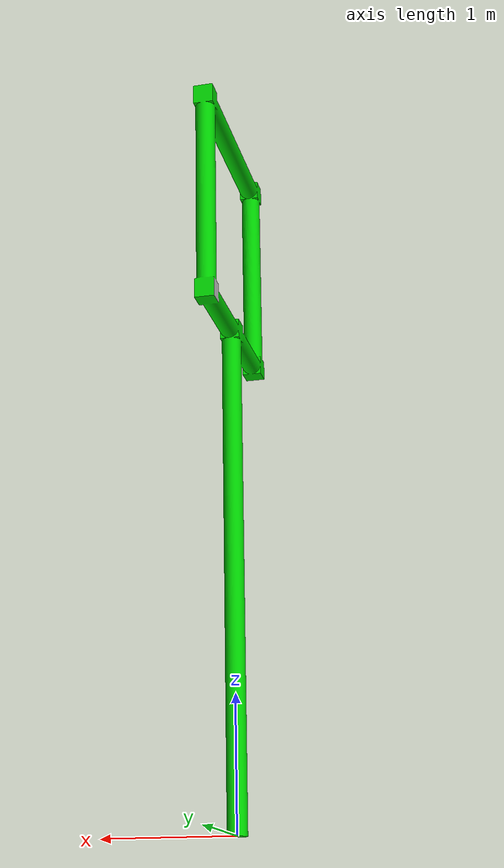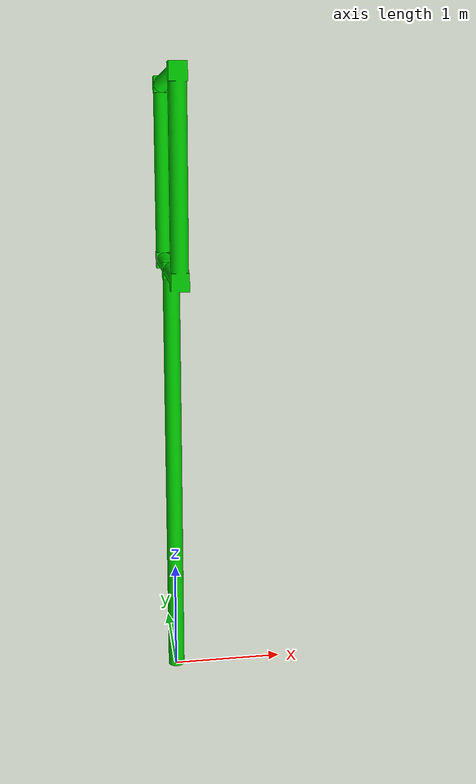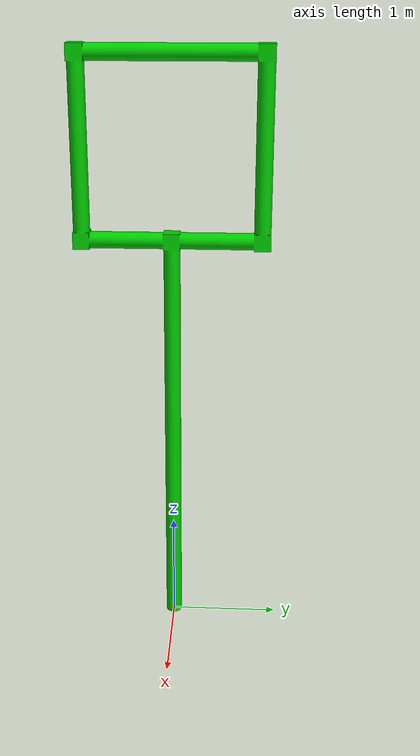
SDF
<?xml version='1.0'?>
<sdf version='1.9'>
  <model name='obstacle'>
    <pose>0 0 0 0 0 0</pose>
    <static>true</static>
    <link name="link">
      <collision name="collision">
        <geometry>
          <mesh>
            <scale>3 3 3</scale>
            <uri>model://obstacle/meshes/obstacle.stl</uri>
          </mesh>
        </geometry>
      </collision>
      <visual name="visual">
        <geometry>
          <mesh>
            <scale>3 3 3</scale>
            <uri>model://obstacle/meshes/obstacle.dae</uri>
          </mesh>
        </geometry>
      </visual>
    </link>
  </model>
</sdf>
